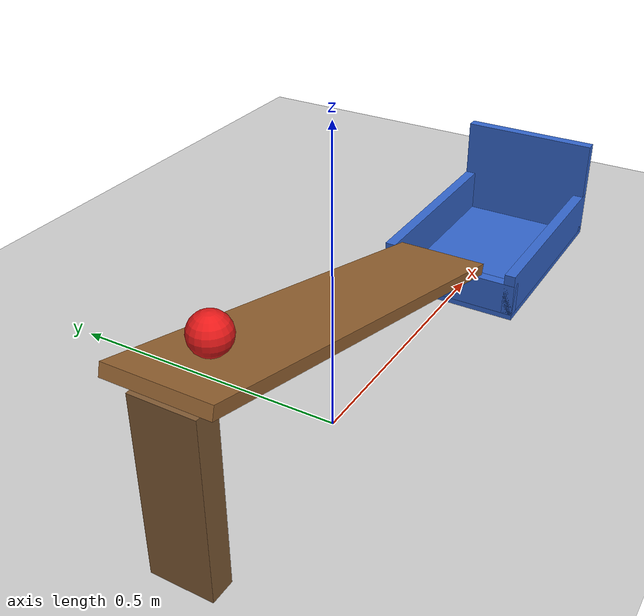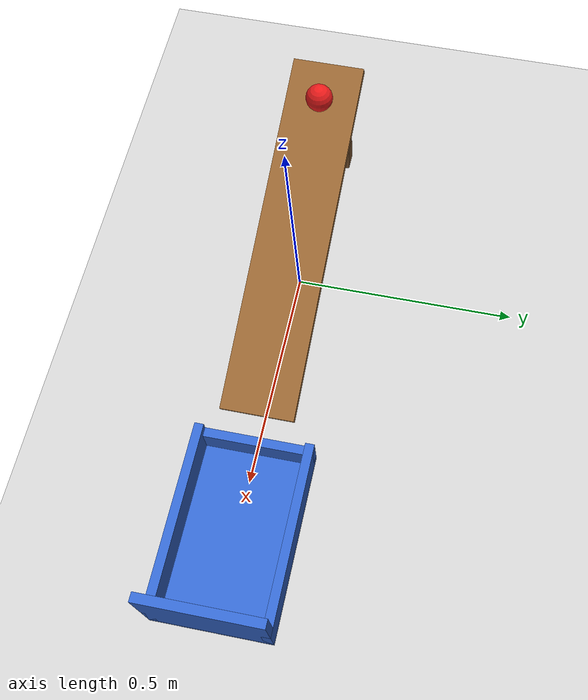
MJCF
<mujoco model="ball_ramp_cup">
  <option timestep="0.002" gravity="0 0 -9.81"/>
  <worldbody>
    <light name="sun" pos="0 0 3" dir="0 0 -1" directional="true"/>
    <geom name="floor" type="plane" size="3 3 0.1" rgba="0.8 0.8 0.8 1"/>

    <geom name="ramp" type="box" size="0.4 0.08 0.01" pos="0 0 0.213" euler="0 15 0" friction="0.8 0.005 0.005" rgba="0.6 0.4 0.2 1"/>
    <geom name="ramp_leg" type="box" size="0.02 0.05 0.145" pos="-0.36 0 0.145" rgba="0.5 0.35 0.2 1"/>

    <body name="cup" pos="0.62 0 0">
      <geom name="cup_bottom" type="box" size="0.2 0.13 0.005" pos="0 0 0.005" rgba="0.2 0.4 0.8 1"/>
      <geom name="cup_near_wall" type="box" size="0.01 0.13 0.03" pos="-0.19 0 0.04" rgba="0.2 0.4 0.8 1"/>
      <geom name="cup_far_wall" type="box" size="0.01 0.13 0.095" pos="0.19 0 0.105" rgba="0.2 0.4 0.8 1"/>
      <geom name="cup_side_left" type="box" size="0.2 0.01 0.04" pos="0 0.12 0.05" rgba="0.2 0.4 0.8 1"/>
      <geom name="cup_side_right" type="box" size="0.2 0.01 0.04" pos="0 -0.12 0.05" rgba="0.2 0.4 0.8 1"/>
    </body>

    <body name="ball" pos="-0.282 0 0.332">
      <freejoint name="ball_free"/>
      <geom name="ball" type="sphere" size="0.03" density="1000" condim="6" friction="0.8 0.005 0.005" rgba="0.9 0.1 0.1 1"/>
    </body>
  </worldbody>

  <keyframe>
    <key name="start" qpos="-0.282 0 0.332 1 0 0 0" qvel="0 0 0 0 0 0"/>
  </keyframe>
</mujoco>
